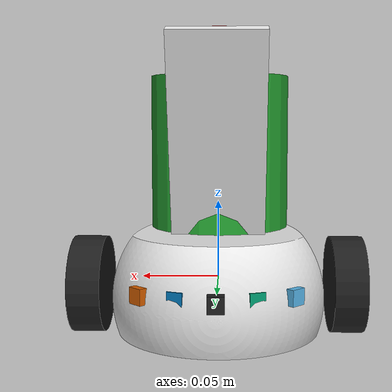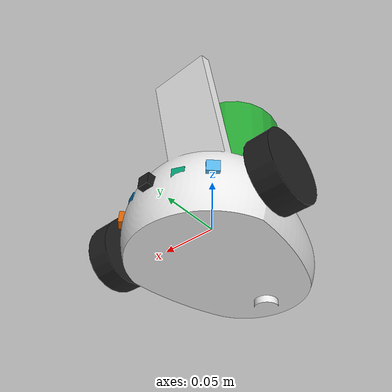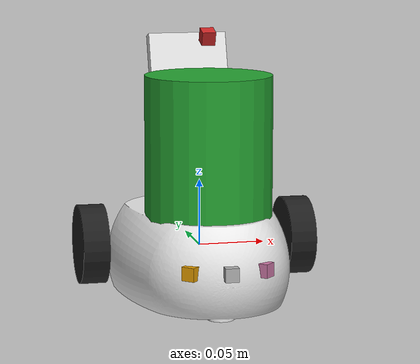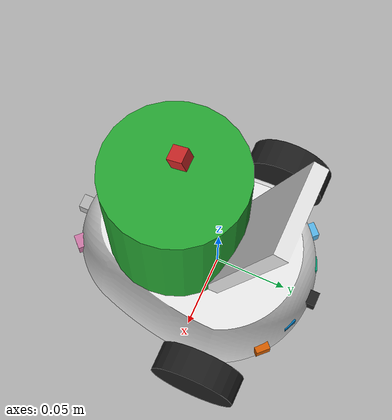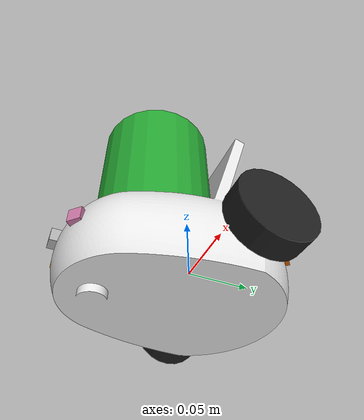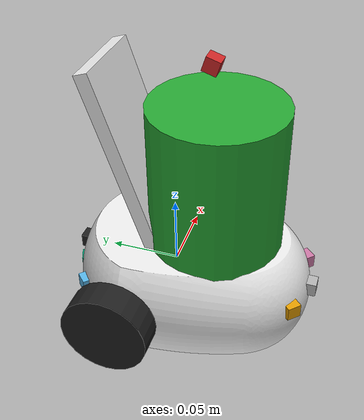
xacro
<?xml version="1.0"?>
<!-- Revolute-Revolute Manipulator -->
<robot name="robobo" xmlns:xacro="http://www.ros.org/wiki/xacro">

  <!-- Constants for robot dimensions -->
  <xacro:property name="PI" value="3.1415926535897931"/>
  <xacro:property name="mass" value="0.2" /> <!-- arbitrary value for mass -->
  <xacro:property name="mass_wheel" value="0.2  " />
  <xacro:property name="inertia_factor" value="0.7" />
  <xacro:property name="camera_link" value="0.05" /> <!-- Size of square 'camera' box -->
  <xacro:property name="wheel_horizontal_shift" value="0.08" /> <!-- arbitrary value for mass -->
  <xacro:property name="wheel_vertical_shift" value="0.020" />
  <xacro:property name="wheel_pitch" value="${PI/2}" />
  <xacro:property name="wheel_yaw" value="0" />
  <xacro:property name="wheel_radius" value="0.03" />
  <xacro:property name="wheel_length" value="0.02" />
  <xacro:property name="cylinder_radius" value="0.047" />
  <xacro:property name="cylinder_length" value="0.105" />
  <xacro:property name="cylinder_z" value="0.08" />
  <xacro:property name="cylinder_y" value="-0.03" />
  <xacro:property name="body_x" value="0.067" />
  <xacro:property name="body_y" value="0.095" />
  <xacro:property name="body_z" value="0.020" />
  <xacro:property name="wheel_r" value="0.030" />
  <xacro:property name="wheel_h" value="0.024" />
  <xacro:property name="camera_x" value="0.0" />
  <xacro:property name="camera_y" value="-0.026" />
  <xacro:property name="camera_z" value="0.16" />
  <xacro:property name="camera_roll" value="${PI / 10}" />
  <xacro:property name="camera_width" value="0.01" />
  <xacro:property name="center_to_back" value="-0.1" />
  <xacro:property name="center_to_front" value="0.07" />
  <xacro:property name="ir_back_vertical_shift" value="0.01" />
  <xacro:property name="ir_back_angle_diff" value="${PI/4}" />
  <xacro:property name="ir_back_1_x" value="0.030" />
  <xacro:property name="ir_back_1_y" value="${center_to_back + ir_back_vertical_shift}" />
  <xacro:property name="ir_back_1_z" value="${body_z}" />
  <xacro:property name="ir_back_1_yaw" value="${-PI/2 + ir_back_angle_diff}" />
  <xacro:property name="ir_back_2_x" value="0.0" />
  <xacro:property name="ir_back_2_y" value="${center_to_back}" />
  <xacro:property name="ir_back_2_z" value="${body_z}" />
  <xacro:property name="ir_back_2_yaw" value="${-PI/2}" />
  <xacro:property name="ir_back_3_x" value="${-ir_back_1_x}" />
  <xacro:property name="ir_back_3_y" value="${ir_back_1_y}" />
  <xacro:property name="ir_back_3_z" value="${body_z}" />
  <xacro:property name="ir_back_3_yaw" value="${-PI/2 - ir_back_angle_diff}" />
  <xacro:property name="ir_front_horizontal_shift" value="0.024" />
  <xacro:property name="ir_front_vertical_shift" value="0.01" />
  <xacro:property name="ir_front_angle_diff" value="${PI/8}" />
  <xacro:property name="ir_front_1_x" value="${ir_front_horizontal_shift * -2}" />
  <xacro:property name="ir_front_1_y" value="${center_to_front + ir_front_vertical_shift * -2}" />
  <xacro:property name="ir_front_1_z" value="${body_z}" />
  <xacro:property name="ir_front_1_yaw" value="${PI/2 + ir_front_angle_diff * 2}" />
  <xacro:property name="ir_front_2_x" value="${ir_front_horizontal_shift * -1}" />
  <xacro:property name="ir_front_2_y" value="${center_to_front + ir_front_vertical_shift * -1}" />
  <xacro:property name="ir_front_2_z" value="${body_z}" />
  <xacro:property name="ir_front_2_yaw" value="${PI/2 + ir_front_angle_diff * 1}" />
  <xacro:property name="ir_front_3_x" value="${ir_front_horizontal_shift * 0}" />
  <xacro:property name="ir_front_3_y" value="${center_to_front}" />
  <xacro:property name="ir_front_3_z" value="${body_z}" />
  <xacro:property name="ir_front_3_yaw" value="${PI/2 + ir_front_angle_diff * 0}" />
  <xacro:property name="ir_front_4_x" value="${ir_front_horizontal_shift * 1}" />
  <xacro:property name="ir_front_4_y" value="${ir_front_2_y}" />
  <xacro:property name="ir_front_4_z" value="${body_z}" />
  <xacro:property name="ir_front_4_yaw" value="${PI/2 + ir_front_angle_diff * -1}" />
  <xacro:property name="ir_front_5_x" value="${ir_front_horizontal_shift * 2}" />
  <xacro:property name="ir_front_5_y" value="${ir_front_1_y}" />
  <xacro:property name="ir_front_5_z" value="${body_z}" />
  <xacro:property name="ir_front_5_yaw" value="${PI/2 + ir_front_angle_diff * -2}" />
  <xacro:property name="ir_width" value="0.01" />

  <xacro:arg name="body_color" default="Gazebo/Green"/>
  <xacro:arg name="model_name" default="undefined"/>

  <!-- Import all Gazebo-customization elements, including Gazebo colors -->
  <xacro:include filename="$(find robobo_description)/urdf/robobo.gazebo" />
  <!-- Import Rviz colors -->
  <xacro:include filename="$(find robobo_description)/urdf/materials.xacro" />

  <!-- Used for fixing robot to Gazebo 'base_link' -->

  <!-- Base Link -->
  <link name="robobo_link">
    <collision>
      <origin xyz="0 0 ${-body_z/2}" rpy="0 0 0"/>
      <geometry>
        <box size="${body_x * 2} ${body_y * 2} ${body_z * 2}" />
      </geometry>
    </collision>

    <visual>
      <origin xyz="0 0 ${-body_z/2}" rpy="0 0 0"/>
      <geometry>
        <mesh filename="package://robobo_description/meshes/robobo.stl" scale="0.001 0.001 0.001"/>
      </geometry>
    </visual>

    <inertial>
      <origin xyz="0 0 0" rpy="0 0 0"/>
      <mass value="${mass}"/>
      <inertia
        ixx="${1/12 * mass * ((2*body_y)**2 + (2*body_z)**2)}" ixy="0.0" ixz="0.0"
        iyy="${1/12 * mass * ((2*body_x)**2 + (2*body_z)**2)}" iyz="0.0"
        izz="${1/12 * mass * ((2*body_x)**2 + (2*body_y)**2)}"/>
    </inertial>
  </link>

  <link name="robobo_cylinder">
    <collision>
      <origin xyz="0 0 0" rpy="0 0 0"/>
      <geometry>
      </geometry>
    </collision>

    <visual>
      <origin xyz="0 0 0" rpy="0 0 0"/>
      <geometry>
        <cylinder radius="${cylinder_radius}" length="${cylinder_length}"/>
      </geometry>
    </visual>

    <inertial>
      <origin xyz="0 0 0" rpy="0 0 0"/>
      <mass value="0"/>
      <inertia
        ixx="0" ixy="0.0" ixz="0.0"
        iyy="0" iyz="0.0"
        izz="0"/>
    </inertial>
  </link>

  <joint name="robobo_bc_joint"   type="fixed">
    <origin  xyz="0 ${cylinder_y} ${cylinder_z}"   rpy="0 0 0" />
    <parent  link="robobo_link" />
    <child   link="robobo_cylinder" />
    <axis  xyz="0 0 1" />
  </joint>

  <link name="robobo_left_wheel_link">
    <collision>
      <origin xyz="0 0 0" rpy="0 ${wheel_pitch} ${wheel_yaw}"/>
      <geometry>
        <cylinder radius="${wheel_radius}" length="${wheel_length}"/>
      </geometry>
    </collision>

    <visual>
      <origin xyz="0 0 0" rpy="0 ${wheel_pitch} ${wheel_yaw}"/>
      <geometry>
        <cylinder radius="${wheel_radius}" length="${wheel_length}"/>
      </geometry>
    </visual>

    <inertial>
      <origin xyz="0 0 0" rpy="0 0 0"/>
      <mass value="${mass_wheel}"/>
      <inertia
        ixx="${1/2 * mass_wheel * wheel_r ** 2}" ixy="0.0" ixz="0.0"
        iyy="${1/12 * mass_wheel * (3 * wheel_r ** 2 + wheel_h ** 2)}" iyz="0.0"
        izz="${1/12 * mass_wheel * (3 * wheel_r ** 2 + wheel_h ** 2)}" />
    </inertial>
  </link>

  <link name="robobo_right_wheel_link">
    <collision>
      <origin xyz="0 0 0" rpy="0 ${wheel_pitch} ${wheel_yaw}"/>
      <geometry>
        <cylinder radius="${wheel_radius}" length="${wheel_length}"/>
      </geometry>
    </collision>

    <visual>
      <origin xyz="0 0 0" rpy="0 ${wheel_pitch} ${wheel_yaw}"/>
      <geometry>
        <cylinder radius="${wheel_radius}" length="${wheel_length}"/>
      </geometry>
    </visual>

    <inertial>
      <origin xyz="0 0 0" rpy="0 0 0"/>
      <mass value="${mass_wheel}"/>
      <inertia
        ixx="${1/2 * mass_wheel * wheel_r ** 2}" ixy="0.0" ixz="0.0"
        iyy="${1/12 * mass_wheel * (3 * wheel_r ** 2 + wheel_h ** 2)}" iyz="0.0"
        izz="${1/12 * mass_wheel * (3 * wheel_r ** 2 + wheel_h ** 2)}"/>
    </inertial>
  </link>

  <joint name="robobo_left_wheel_joint" type="continuous">
    <axis xyz="-1 0 0" />
    <origin xyz="${-wheel_horizontal_shift} ${wheel_vertical_shift} 0" rpy="0 0 0"/>
    <parent link="robobo_link"/>
    <child link="robobo_left_wheel_link"/>
  </joint>

  <joint name="robobo_right_wheel_joint" type="continuous">
    <axis xyz="-1 0 0" />
    <origin xyz="${wheel_horizontal_shift} ${wheel_vertical_shift} 0" rpy="0 0 0"/>
    <parent link="robobo_link"/>
    <child link="robobo_right_wheel_link"/>
  </joint>

  <joint name="camera_joint" type="fixed">
    <axis xyz="0 1 0" />
    <origin xyz="0 0 0" rpy="0 0 0"/>
    <parent link="robobo_link"/>
    <child link="camera_link"/>
  </joint>

  <!-- Camera -->
  <link name="camera_link">
    <collision>
      <origin xyz="0 ${camera_y} ${camera_z}" rpy="${camera_roll} 0 0"/>
      <geometry>
	    <box size="${camera_width} ${camera_width} ${camera_width}"/>
      </geometry>
    </collision>

    <visual>
      <origin xyz="0 ${camera_y} ${camera_z}" rpy="${camera_roll} 0 0"/>
      <geometry>
	    <box size="${camera_width} ${camera_width} ${camera_width}"/>
      </geometry>
      <material name="red"/>
    </visual>

    <inertial>
      <mass value="0" />
      <origin xyz="0 0 0" rpy="0 0 0"/>
      <inertia ixx="0" ixy="0" ixz="0" iyy="0" iyz="0" izz="0" />
    </inertial>
  </link>

  <joint name="camera_optical_joint" type="fixed">
    <!-- these values have to be these values otherwise the gazebo camera image
        won't be aligned properly with the frame it is supposedly originating from -->
    <origin xyz="0 ${camera_y} ${camera_z}" rpy="${-PI/2 - camera_roll} 0 ${-PI/2 -PI/2}"/>
    <parent link="camera_link"/>
    <child link="camera_link_optical"/>
  </joint>

  <link name="camera_link_optical">
  </link>

  <joint name="ir_back_1_joint" type="fixed">
    <axis xyz="0 1 0" />
    <origin xyz="${ir_back_1_x} ${ir_back_1_y - ir_width/2} 0" rpy="0 0 ${ir_back_1_yaw}"/>
    <parent link="robobo_link"/>
    <child link="ir_back_1_link"/>
  </joint>

  <link name="ir_back_1_link">
    <collision>
      <origin xyz="${-ir_width/2} 0 0" rpy="0 0 0"/>
      <geometry>
        <box size="${ir_width} ${ir_width} ${ir_width}"/>
      </geometry>
    </collision>
    <visual>
      <origin xyz="${-ir_width/2} 0 0" rpy="0 0 0"/>
      <geometry>
        <box size="${ir_width} ${ir_width} ${ir_width}"/>
      </geometry>
    </visual>
    <inertial>
      <mass value="0" />
      <origin xyz="0 0 0" rpy="0 0 0"/>
      <inertia ixx="0" ixy="0" ixz="0" iyy="0" iyz="0" izz="0" />
    </inertial>
  </link>

  <joint name="ir_back_2_joint" type="fixed">
    <axis xyz="0 1 0" />
    <origin xyz="0 ${ir_back_2_y - ir_width/2} 0" rpy="0 0 ${ir_back_2_yaw}"/>
    <parent link="robobo_link"/>
    <child link="ir_back_2_link"/>
  </joint>

  <link name="ir_back_2_link">
    <collision>
      <origin xyz="${-ir_width/2} 0 0" rpy="0 0 0"/>
      <geometry>
        <box size="${ir_width} ${ir_width} ${ir_width}"/>
      </geometry>
    </collision>
    <visual>
      <origin xyz="${-ir_width/2} 0 0" rpy="0 0 0"/>
      <geometry>
        <box size="${ir_width} ${ir_width} ${ir_width}"/>
      </geometry>
    </visual>
    <inertial>
      <mass value="0" />
      <origin xyz="0 0 0" rpy="0 0 0"/>
      <inertia ixx="0" ixy="0" ixz="0" iyy="0" iyz="0" izz="0" />
    </inertial>
  </link>

  <joint name="ir_back_3_joint" type="fixed">
    <axis xyz="0 1 0" />
    <origin xyz="${ir_back_3_x} ${ir_back_3_y - ir_width/2} 0" rpy="0 0 ${ir_back_3_yaw}"/>
    <parent link="robobo_link"/>
    <child link="ir_back_3_link"/>
  </joint>

  <link name="ir_back_3_link">
    <collision>
      <origin xyz="${-ir_width/2} 0 0" rpy="0 0 0"/>
      <geometry>
        <box size="${ir_width} ${ir_width} ${ir_width}"/>
      </geometry>
    </collision>
    <visual>
      <origin xyz="${-ir_width/2} 0 0" rpy="0 0 0"/>
      <geometry>
        <box size="${ir_width} ${ir_width} ${ir_width}"/>
      </geometry>
    </visual>
    <inertial>
      <mass value="0" />
      <origin xyz="0 0 0" rpy="0 0 0"/>
      <inertia ixx="0" ixy="0" ixz="0" iyy="0" iyz="0" izz="0" />
    </inertial>
  </link>

  <joint name="ir_front_1_joint" type="fixed">
    <axis xyz="0 1 0" />
    <origin xyz="${ir_front_1_x} ${ir_front_1_y + ir_width/2} 0" rpy="0 0 ${ir_front_1_yaw}"/>
    <parent link="robobo_link"/>
    <child link="ir_front_1_link"/>
  </joint>

  <link name="ir_front_1_link">
    <collision>
      <origin xyz="${-ir_width/2} 0 0" rpy="0 0 0"/>
      <geometry>
        <box size="${ir_width} ${ir_width} ${ir_width}"/>
      </geometry>
    </collision>
    <visual>
      <origin xyz="${-ir_width/2} 0 0" rpy="0 0 0"/>
      <geometry>
        <box size="${ir_width} ${ir_width} ${ir_width}"/>
      </geometry>
    </visual>
    <inertial>
      <mass value="0" />
      <origin xyz="0 0 0" rpy="0 0 0"/>
      <inertia ixx="0" ixy="0" ixz="0" iyy="0" iyz="0" izz="0" />
    </inertial>
  </link>

  <joint name="ir_front_2_joint" type="fixed">
    <axis xyz="0 1 0" />
    <origin xyz="${ir_front_2_x} ${ir_front_2_y + ir_width/2} 0" rpy="0 0 ${ir_front_2_yaw}"/>
    <parent link="robobo_link"/>
    <child link="ir_front_2_link"/>
  </joint>

  <link name="ir_front_2_link">
    <collision>
      <origin xyz="${-ir_width/2} 0 0" rpy="0 0 0"/>
      <geometry>
        <box size="${ir_width} ${ir_width} ${ir_width}"/>
      </geometry>
    </collision>
    <visual>
      <origin xyz="${-ir_width/2} 0 0" rpy="0 0 0"/>
      <geometry>
        <box size="${ir_width} ${ir_width} ${ir_width}"/>
      </geometry>
    </visual>
    <inertial>
      <mass value="0" />
      <origin xyz="0 0 0" rpy="0 0 0"/>
      <inertia ixx="0" ixy="0" ixz="0" iyy="0" iyz="0" izz="0" />
    </inertial>
  </link>

  <joint name="ir_front_3_joint" type="fixed">
    <axis xyz="0 1 0" />
    <origin xyz="${ir_front_3_x} ${ir_front_3_y + ir_width/2} 0" rpy="0 0 ${ir_front_3_yaw}"/>
    <parent link="robobo_link"/>
    <child link="ir_front_3_link"/>
  </joint>

  <link name="ir_front_3_link">
    <collision>
      <origin xyz="${-ir_width/2} 0 0" rpy="0 0 0"/>
      <geometry>
        <box size="${ir_width} ${ir_width} ${ir_width}"/>
      </geometry>
    </collision>
    <visual>
      <origin xyz="${-ir_width/2} 0 0" rpy="0 0 0"/>
      <geometry>
        <box size="${ir_width} ${ir_width} ${ir_width}"/>
      </geometry>
    </visual>
    <inertial>
      <mass value="0" />
      <origin xyz="0 0 0" rpy="0 0 0"/>
      <inertia ixx="0" ixy="0" ixz="0" iyy="0" iyz="0" izz="0" />
    </inertial>
  </link>

  <joint name="ir_front_4_joint" type="fixed">
    <axis xyz="0 1 0" />
    <origin xyz="${ir_front_4_x} ${ir_front_4_y + ir_width/2} 0" rpy="0 0 ${ir_front_4_yaw}"/>
    <parent link="robobo_link"/>
    <child link="ir_front_4_link"/>
  </joint>

  <link name="ir_front_4_link">
    <collision>
      <origin xyz="${-ir_width/2} 0 0" rpy="0 0 0"/>
      <geometry>
        <box size="${ir_width} ${ir_width} ${ir_width}"/>
      </geometry>
    </collision>
    <visual>
      <origin xyz="${-ir_width/2} 0 0" rpy="0 0 0"/>
      <geometry>
        <box size="${ir_width} ${ir_width} ${ir_width}"/>
      </geometry>
    </visual>
    <inertial>
      <mass value="0" />
      <origin xyz="0 0 0" rpy="0 0 0"/>
      <inertia ixx="0" ixy="0" ixz="0" iyy="0" iyz="0" izz="0" />
    </inertial>
  </link>

  <joint name="ir_front_5_joint" type="fixed">
    <axis xyz="0 1 0" />
    <origin xyz="${ir_front_5_x} ${ir_front_5_y + ir_width/2} 0" rpy="0 0 ${ir_front_5_yaw}"/>
    <parent link="robobo_link"/>
    <child link="ir_front_5_link"/>
  </joint>

  <link name="ir_front_5_link">
    <collision>
      <origin xyz="${-ir_width/2} 0 0" rpy="0 0 0"/>
      <geometry>
        <box size="${ir_width} ${ir_width} ${ir_width}"/>
      </geometry>
    </collision>
    <visual>
      <origin xyz="${-ir_width/2} 0 0" rpy="0 0 0"/>
      <geometry>
        <box size="${ir_width} ${ir_width} ${ir_width}"/>
      </geometry>
    </visual>
    <inertial>
      <mass value="0" />
      <origin xyz="0 0 0" rpy="0 0 0"/>
      <inertia ixx="0" ixy="0" ixz="0" iyy="0" iyz="0" izz="0" />
    </inertial>
  </link>

  <transmission name="tran1">
    <type>transmission_interface/SimpleTransmission</type>
    <joint name="robobo_left_wheel_joint">
      <hardwareInterface>hardware_interface/VelocityJointInterface</hardwareInterface>
    </joint>
    <actuator name="robobo_left_wheel_joint_actuator">
      <hardwareInterface>VelocityJointInterface</hardwareInterface>
      <mechanicalReduction>7</mechanicalReduction>
    </actuator>
  </transmission>

  <transmission name="tran2">
    <type>transmission_interface/SimpleTransmission</type>
    <joint name="robobo_right_wheel_joint">
      <hardwareInterface>hardware_interface/VelocityJointInterface</hardwareInterface>
    </joint>
    <actuator name="robobo_right_wheel_joint_actuator">
      <hardwareInterface>VelocityJointInterface</hardwareInterface>
      <mechanicalReduction>7</mechanicalReduction>
    </actuator>
  </transmission>

</robot>
